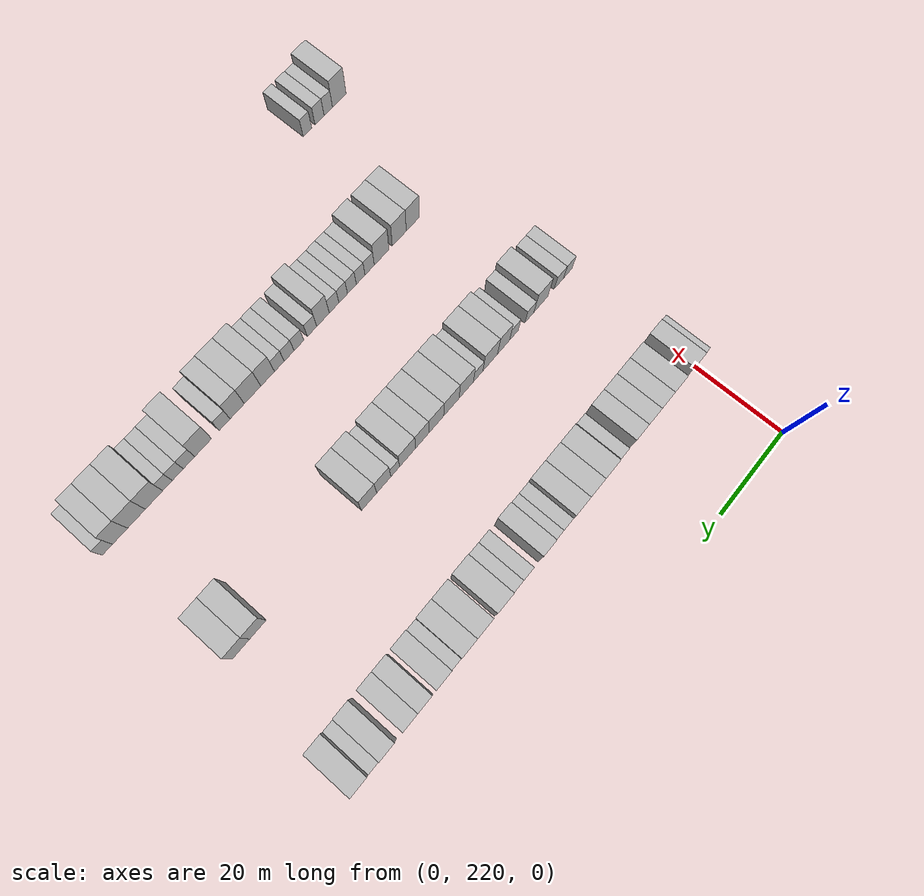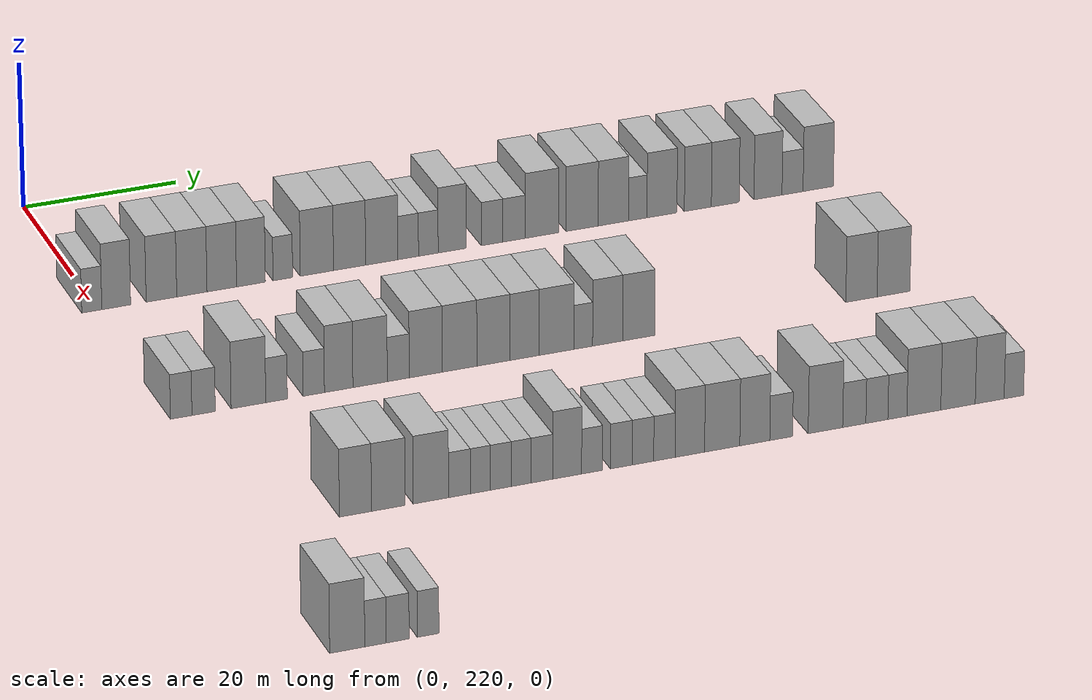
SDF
<sdf version="1.6">
 <world name="default">
  <model name="building_168">
   <static>1</static>
   <pose>25.0000 219.1875 0 0.000000 0.000000 0.000000</pose>
   <link name="link">
    <pose>0 0 3.00 0 0 0</pose>
    <collision name="collision"><geometry><box><size>10.0000 2.5773 6.0000</size></box></geometry></collision>
    <visual name="visual">
     <cast_shadows>0</cast_shadows>
     <geometry><box><size>10.0000 2.5773 6.0000</size></box></geometry>
     <material>
      <script>
       <uri>model://HANNAS_wall/materials/scripts</uri>
       <uri>model://HANNAS_wall/materials/textures</uri>
       <name>vrc/HANNAS_wall</name>
      </script>
     </material>
    </visual>
   </link>
  </model>
  <model name="building_169">
   <static>1</static>
   <pose>25.0000 222.3309 0 0.000000 0.000000 0.000000</pose>
   <link name="link">
    <pose>0 0 4.50 0 0 0</pose>
    <collision name="collision"><geometry><box><size>10.0000 3.7097 9.0000</size></box></geometry></collision>
    <visual name="visual">
     <cast_shadows>0</cast_shadows>
     <geometry><box><size>10.0000 3.7097 9.0000</size></box></geometry>
     <material>
      <script>
       <uri>model://HANNAS_wall/materials/scripts</uri>
       <uri>model://HANNAS_wall/materials/textures</uri>
       <name>vrc/HANNAS_wall</name>
      </script>
     </material>
    </visual>
   </link>
  </model>
  <model name="building_170">
   <static>1</static>
   <pose>25.0000 228.1628 0 0.000000 0.000000 0.000000</pose>
   <link name="link">
    <pose>0 0 4.50 0 0 0</pose>
    <collision name="collision"><geometry><box><size>10.0000 3.9540 9.0000</size></box></geometry></collision>
    <visual name="visual">
     <cast_shadows>0</cast_shadows>
     <geometry><box><size>10.0000 3.9540 9.0000</size></box></geometry>
     <material>
      <script>
       <uri>model://HANNAS_wall/materials/scripts</uri>
       <uri>model://HANNAS_wall/materials/textures</uri>
       <name>vrc/HANNAS_wall</name>
      </script>
     </material>
    </visual>
   </link>
  </model>
  <model name="building_171">
   <static>1</static>
   <pose>25.0000 232.1003 0 0.000000 0.000000 0.000000</pose>
   <link name="link">
    <pose>0 0 4.50 0 0 0</pose>
    <collision name="collision"><geometry><box><size>10.0000 3.9212 9.0000</size></box></geometry></collision>
    <visual name="visual">
     <cast_shadows>0</cast_shadows>
     <geometry><box><size>10.0000 3.9212 9.0000</size></box></geometry>
     <material>
      <script>
       <uri>model://HANNAS_wall/materials/scripts</uri>
       <uri>model://HANNAS_wall/materials/textures</uri>
       <name>vrc/HANNAS_wall</name>
      </script>
     </material>
    </visual>
   </link>
  </model>
  <model name="building_172">
   <static>1</static>
   <pose>25.0000 235.9805 0 0.000000 0.000000 0.000000</pose>
   <link name="link">
    <pose>0 0 4.50 0 0 0</pose>
    <collision name="collision"><geometry><box><size>10.0000 3.8391 9.0000</size></box></geometry></collision>
    <visual name="visual">
     <cast_shadows>0</cast_shadows>
     <geometry><box><size>10.0000 3.8391 9.0000</size></box></geometry>
     <material>
      <script>
       <uri>model://HANNAS_wall/materials/scripts</uri>
       <uri>model://HANNAS_wall/materials/textures</uri>
       <name>vrc/HANNAS_wall</name>
      </script>
     </material>
    </visual>
   </link>
  </model>
  <model name="building_173">
   <static>1</static>
   <pose>25.0000 239.7694 0 0.000000 0.000000 0.000000</pose>
   <link name="link">
    <pose>0 0 4.50 0 0 0</pose>
    <collision name="collision"><geometry><box><size>10.0000 3.7388 9.0000</size></box></geometry></collision>
    <visual name="visual">
     <cast_shadows>0</cast_shadows>
     <geometry><box><size>10.0000 3.7388 9.0000</size></box></geometry>
     <material>
      <script>
       <uri>model://HANNAS_wall/materials/scripts</uri>
       <uri>model://HANNAS_wall/materials/textures</uri>
       <name>vrc/HANNAS_wall</name>
      </script>
     </material>
    </visual>
   </link>
  </model>
  <model name="building_174">
   <static>1</static>
   <pose>25.0000 243.9170 0 0.000000 0.000000 0.000000</pose>
   <link name="link">
    <pose>0 0 3.00 0 0 0</pose>
    <collision name="collision"><geometry><box><size>10.0000 2.5564 6.0000</size></box></geometry></collision>
    <visual name="visual">
     <cast_shadows>0</cast_shadows>
     <geometry><box><size>10.0000 2.5564 6.0000</size></box></geometry>
     <material>
      <script>
       <uri>model://HANNAS_wall/materials/scripts</uri>
       <uri>model://HANNAS_wall/materials/textures</uri>
       <name>vrc/HANNAS_wall</name>
      </script>
     </material>
    </visual>
   </link>
  </model>
  <model name="building_175">
   <static>1</static>
   <pose>25.0000 248.3666 0 0.000000 0.000000 0.000000</pose>
   <link name="link">
    <pose>0 0 4.50 0 0 0</pose>
    <collision name="collision"><geometry><box><size>10.0000 4.3428 9.0000</size></box></geometry></collision>
    <visual name="visual">
     <cast_shadows>0</cast_shadows>
     <geometry><box><size>10.0000 4.3428 9.0000</size></box></geometry>
     <material>
      <script>
       <uri>model://HANNAS_wall/materials/scripts</uri>
       <uri>model://HANNAS_wall/materials/textures</uri>
       <name>vrc/HANNAS_wall</name>
      </script>
     </material>
    </visual>
   </link>
  </model>
  <model name="building_176">
   <static>1</static>
   <pose>25.0000 252.6427 0 0.000000 0.000000 0.000000</pose>
   <link name="link">
    <pose>0 0 4.50 0 0 0</pose>
    <collision name="collision"><geometry><box><size>10.0000 4.2095 9.0000</size></box></geometry></collision>
    <visual name="visual">
     <cast_shadows>0</cast_shadows>
     <geometry><box><size>10.0000 4.2095 9.0000</size></box></geometry>
     <material>
      <script>
       <uri>model://HANNAS_wall/materials/scripts</uri>
       <uri>model://HANNAS_wall/materials/textures</uri>
       <name>vrc/HANNAS_wall</name>
      </script>
     </material>
    </visual>
   </link>
  </model>
  <model name="building_177">
   <static>1</static>
   <pose>25.0000 256.8588 0 0.000000 0.000000 0.000000</pose>
   <link name="link">
    <pose>0 0 4.50 0 0 0</pose>
    <collision name="collision"><geometry><box><size>10.0000 4.2226 9.0000</size></box></geometry></collision>
    <visual name="visual">
     <cast_shadows>0</cast_shadows>
     <geometry><box><size>10.0000 4.2226 9.0000</size></box></geometry>
     <material>
      <script>
       <uri>model://HANNAS_wall/materials/scripts</uri>
       <uri>model://HANNAS_wall/materials/textures</uri>
       <name>vrc/HANNAS_wall</name>
      </script>
     </material>
    </visual>
   </link>
  </model>
  <model name="building_178">
   <static>1</static>
   <pose>25.0000 260.3360 0 0.000000 0.000000 0.000000</pose>
   <link name="link">
    <pose>0 0 3.00 0 0 0</pose>
    <collision name="collision"><geometry><box><size>10.0000 2.7318 6.0000</size></box></geometry></collision>
    <visual name="visual">
     <cast_shadows>0</cast_shadows>
     <geometry><box><size>10.0000 2.7318 6.0000</size></box></geometry>
     <material>
      <script>
       <uri>model://HANNAS_wall/materials/scripts</uri>
       <uri>model://HANNAS_wall/materials/textures</uri>
       <name>vrc/HANNAS_wall</name>
      </script>
     </material>
    </visual>
   </link>
  </model>
  <model name="building_179">
   <static>1</static>
   <pose>25.0000 262.9987 0 0.000000 0.000000 0.000000</pose>
   <link name="link">
    <pose>0 0 3.00 0 0 0</pose>
    <collision name="collision"><geometry><box><size>10.0000 2.5936 6.0000</size></box></geometry></collision>
    <visual name="visual">
     <cast_shadows>0</cast_shadows>
     <geometry><box><size>10.0000 2.5936 6.0000</size></box></geometry>
     <material>
      <script>
       <uri>model://HANNAS_wall/materials/scripts</uri>
       <uri>model://HANNAS_wall/materials/textures</uri>
       <name>vrc/HANNAS_wall</name>
      </script>
     </material>
    </visual>
   </link>
  </model>
  <model name="building_180">
   <static>1</static>
   <pose>25.0000 266.1414 0 0.000000 0.000000 0.000000</pose>
   <link name="link">
    <pose>0 0 4.50 0 0 0</pose>
    <collision name="collision"><geometry><box><size>10.0000 3.6918 9.0000</size></box></geometry></collision>
    <visual name="visual">
     <cast_shadows>0</cast_shadows>
     <geometry><box><size>10.0000 3.6918 9.0000</size></box></geometry>
     <material>
      <script>
       <uri>model://HANNAS_wall/materials/scripts</uri>
       <uri>model://HANNAS_wall/materials/textures</uri>
       <name>vrc/HANNAS_wall</name>
      </script>
     </material>
    </visual>
   </link>
  </model>
  <model name="building_181">
   <static>1</static>
   <pose>25.0000 271.4257 0 0.000000 0.000000 0.000000</pose>
   <link name="link">
    <pose>0 0 3.00 0 0 0</pose>
    <collision name="collision"><geometry><box><size>10.0000 2.8769 6.0000</size></box></geometry></collision>
    <visual name="visual">
     <cast_shadows>0</cast_shadows>
     <geometry><box><size>10.0000 2.8769 6.0000</size></box></geometry>
     <material>
      <script>
       <uri>model://HANNAS_wall/materials/scripts</uri>
       <uri>model://HANNAS_wall/materials/textures</uri>
       <name>vrc/HANNAS_wall</name>
      </script>
     </material>
    </visual>
   </link>
  </model>
  <model name="building_182">
   <static>1</static>
   <pose>25.0000 274.3621 0 0.000000 0.000000 0.000000</pose>
   <link name="link">
    <pose>0 0 3.00 0 0 0</pose>
    <collision name="collision"><geometry><box><size>10.0000 2.9959 6.0000</size></box></geometry></collision>
    <visual name="visual">
     <cast_shadows>0</cast_shadows>
     <geometry><box><size>10.0000 2.9959 6.0000</size></box></geometry>
     <material>
      <script>
       <uri>model://HANNAS_wall/materials/scripts</uri>
       <uri>model://HANNAS_wall/materials/textures</uri>
       <name>vrc/HANNAS_wall</name>
      </script>
     </material>
    </visual>
   </link>
  </model>
  <model name="building_183">
   <static>1</static>
   <pose>25.0000 278.0585 0 0.000000 0.000000 0.000000</pose>
   <link name="link">
    <pose>0 0 4.50 0 0 0</pose>
    <collision name="collision"><geometry><box><size>10.0000 4.3968 9.0000</size></box></geometry></collision>
    <visual name="visual">
     <cast_shadows>0</cast_shadows>
     <geometry><box><size>10.0000 4.3968 9.0000</size></box></geometry>
     <material>
      <script>
       <uri>model://HANNAS_wall/materials/scripts</uri>
       <uri>model://HANNAS_wall/materials/textures</uri>
       <name>vrc/HANNAS_wall</name>
      </script>
     </material>
    </visual>
   </link>
  </model>
  <model name="building_184">
   <static>1</static>
   <pose>25.0000 283.3996 0 0.000000 0.000000 0.000000</pose>
   <link name="link">
    <pose>0 0 4.50 0 0 0</pose>
    <collision name="collision"><geometry><box><size>10.0000 4.2855 9.0000</size></box></geometry></collision>
    <visual name="visual">
     <cast_shadows>0</cast_shadows>
     <geometry><box><size>10.0000 4.2855 9.0000</size></box></geometry>
     <material>
      <script>
       <uri>model://HANNAS_wall/materials/scripts</uri>
       <uri>model://HANNAS_wall/materials/textures</uri>
       <name>vrc/HANNAS_wall</name>
      </script>
     </material>
    </visual>
   </link>
  </model>
  <model name="building_185">
   <static>1</static>
   <pose>25.0000 287.5723 0 0.000000 0.000000 0.000000</pose>
   <link name="link">
    <pose>0 0 4.50 0 0 0</pose>
    <collision name="collision"><geometry><box><size>10.0000 4.0598 9.0000</size></box></geometry></collision>
    <visual name="visual">
     <cast_shadows>0</cast_shadows>
     <geometry><box><size>10.0000 4.0598 9.0000</size></box></geometry>
     <material>
      <script>
       <uri>model://HANNAS_wall/materials/scripts</uri>
       <uri>model://HANNAS_wall/materials/textures</uri>
       <name>vrc/HANNAS_wall</name>
      </script>
     </material>
    </visual>
   </link>
  </model>
  <model name="building_186">
   <static>1</static>
   <pose>25.0000 290.8370 0 0.000000 0.000000 0.000000</pose>
   <link name="link">
    <pose>0 0 3.00 0 0 0</pose>
    <collision name="collision"><geometry><box><size>10.0000 2.4697 6.0000</size></box></geometry></collision>
    <visual name="visual">
     <cast_shadows>0</cast_shadows>
     <geometry><box><size>10.0000 2.4697 6.0000</size></box></geometry>
     <material>
      <script>
       <uri>model://HANNAS_wall/materials/scripts</uri>
       <uri>model://HANNAS_wall/materials/textures</uri>
       <name>vrc/HANNAS_wall</name>
      </script>
     </material>
    </visual>
   </link>
  </model>
  <model name="building_187">
   <static>1</static>
   <pose>25.0000 294.0807 0 0.000000 0.000000 0.000000</pose>
   <link name="link">
    <pose>0 0 4.50 0 0 0</pose>
    <collision name="collision"><geometry><box><size>10.0000 4.0177 9.0000</size></box></geometry></collision>
    <visual name="visual">
     <cast_shadows>0</cast_shadows>
     <geometry><box><size>10.0000 4.0177 9.0000</size></box></geometry>
     <material>
      <script>
       <uri>model://HANNAS_wall/materials/scripts</uri>
       <uri>model://HANNAS_wall/materials/textures</uri>
       <name>vrc/HANNAS_wall</name>
      </script>
     </material>
    </visual>
   </link>
  </model>
  <model name="building_188">
   <static>1</static>
   <pose>25.0000 298.9088 0 0.000000 0.000000 0.000000</pose>
   <link name="link">
    <pose>0 0 4.50 0 0 0</pose>
    <collision name="collision"><geometry><box><size>10.0000 3.6384 9.0000</size></box></geometry></collision>
    <visual name="visual">
     <cast_shadows>0</cast_shadows>
     <geometry><box><size>10.0000 3.6384 9.0000</size></box></geometry>
     <material>
      <script>
       <uri>model://HANNAS_wall/materials/scripts</uri>
       <uri>model://HANNAS_wall/materials/textures</uri>
       <name>vrc/HANNAS_wall</name>
      </script>
     </material>
    </visual>
   </link>
  </model>
  <model name="building_189">
   <static>1</static>
   <pose>25.0000 302.6043 0 0.000000 0.000000 0.000000</pose>
   <link name="link">
    <pose>0 0 4.50 0 0 0</pose>
    <collision name="collision"><geometry><box><size>10.0000 3.7527 9.0000</size></box></geometry></collision>
    <visual name="visual">
     <cast_shadows>0</cast_shadows>
     <geometry><box><size>10.0000 3.7527 9.0000</size></box></geometry>
     <material>
      <script>
       <uri>model://HANNAS_wall/materials/scripts</uri>
       <uri>model://HANNAS_wall/materials/textures</uri>
       <name>vrc/HANNAS_wall</name>
      </script>
     </material>
    </visual>
   </link>
  </model>
  <model name="building_190">
   <static>1</static>
   <pose>25.0000 308.3782 0 0.000000 0.000000 0.000000</pose>
   <link name="link">
    <pose>0 0 4.50 0 0 0</pose>
    <collision name="collision"><geometry><box><size>10.0000 3.7952 9.0000</size></box></geometry></collision>
    <visual name="visual">
     <cast_shadows>0</cast_shadows>
     <geometry><box><size>10.0000 3.7952 9.0000</size></box></geometry>
     <material>
      <script>
       <uri>model://HANNAS_wall/materials/scripts</uri>
       <uri>model://HANNAS_wall/materials/textures</uri>
       <name>vrc/HANNAS_wall</name>
      </script>
     </material>
    </visual>
   </link>
  </model>
  <model name="building_191">
   <static>1</static>
   <pose>25.0000 311.7015 0 0.000000 0.000000 0.000000</pose>
   <link name="link">
    <pose>0 0 3.00 0 0 0</pose>
    <collision name="collision"><geometry><box><size>10.0000 2.8514 6.0000</size></box></geometry></collision>
    <visual name="visual">
     <cast_shadows>0</cast_shadows>
     <geometry><box><size>10.0000 2.8514 6.0000</size></box></geometry>
     <material>
      <script>
       <uri>model://HANNAS_wall/materials/scripts</uri>
       <uri>model://HANNAS_wall/materials/textures</uri>
       <name>vrc/HANNAS_wall</name>
      </script>
     </material>
    </visual>
   </link>
  </model>
  <model name="building_192">
   <static>1</static>
   <pose>25.0000 315.1863 0 0.000000 0.000000 0.000000</pose>
   <link name="link">
    <pose>0 0 4.50 0 0 0</pose>
    <collision name="collision"><geometry><box><size>10.0000 4.1181 9.0000</size></box></geometry></collision>
    <visual name="visual">
     <cast_shadows>0</cast_shadows>
     <geometry><box><size>10.0000 4.1181 9.0000</size></box></geometry>
     <material>
      <script>
       <uri>model://HANNAS_wall/materials/scripts</uri>
       <uri>model://HANNAS_wall/materials/textures</uri>
       <name>vrc/HANNAS_wall</name>
      </script>
     </material>
    </visual>
   </link>
  </model>
  <model name="building_396">
   <static>1</static>
   <pose>55.0000 220.6976 0 0.000000 0.000000 0.000000</pose>
   <link name="link">
    <pose>0 0 3.00 0 0 0</pose>
    <collision name="collision"><geometry><box><size>10.0000 2.7101 6.0000</size></box></geometry></collision>
    <visual name="visual">
     <cast_shadows>0</cast_shadows>
     <geometry><box><size>10.0000 2.7101 6.0000</size></box></geometry>
     <material>
      <script>
       <uri>model://HANNAS_wall/materials/scripts</uri>
       <uri>model://HANNAS_wall/materials/textures</uri>
       <name>vrc/HANNAS_wall</name>
      </script>
     </material>
    </visual>
   </link>
  </model>
  <model name="building_397">
   <static>1</static>
   <pose>55.0000 223.5245 0 0.000000 0.000000 0.000000</pose>
   <link name="link">
    <pose>0 0 3.00 0 0 0</pose>
    <collision name="collision"><geometry><box><size>10.0000 2.9437 6.0000</size></box></geometry></collision>
    <visual name="visual">
     <cast_shadows>0</cast_shadows>
     <geometry><box><size>10.0000 2.9437 6.0000</size></box></geometry>
     <material>
      <script>
       <uri>model://HANNAS_wall/materials/scripts</uri>
       <uri>model://HANNAS_wall/materials/textures</uri>
       <name>vrc/HANNAS_wall</name>
      </script>
     </material>
    </visual>
   </link>
  </model>
  <model name="building_398">
   <static>1</static>
   <pose>55.0000 229.1892 0 0.000000 0.000000 0.000000</pose>
   <link name="link">
    <pose>0 0 4.50 0 0 0</pose>
    <collision name="collision"><geometry><box><size>10.0000 4.3858 9.0000</size></box></geometry></collision>
    <visual name="visual">
     <cast_shadows>0</cast_shadows>
     <geometry><box><size>10.0000 4.3858 9.0000</size></box></geometry>
     <material>
      <script>
       <uri>model://HANNAS_wall/materials/scripts</uri>
       <uri>model://HANNAS_wall/materials/textures</uri>
       <name>vrc/HANNAS_wall</name>
      </script>
     </material>
    </visual>
   </link>
  </model>
  <model name="building_399">
   <static>1</static>
   <pose>55.0000 232.7506 0 0.000000 0.000000 0.000000</pose>
   <link name="link">
    <pose>0 0 3.00 0 0 0</pose>
    <collision name="collision"><geometry><box><size>10.0000 2.7369 6.0000</size></box></geometry></collision>
    <visual name="visual">
     <cast_shadows>0</cast_shadows>
     <geometry><box><size>10.0000 2.7369 6.0000</size></box></geometry>
     <material>
      <script>
       <uri>model://HANNAS_wall/materials/scripts</uri>
       <uri>model://HANNAS_wall/materials/textures</uri>
       <name>vrc/HANNAS_wall</name>
      </script>
     </material>
    </visual>
   </link>
  </model>
  <model name="building_400">
   <static>1</static>
   <pose>55.0000 237.4791 0 0.000000 0.000000 0.000000</pose>
   <link name="link">
    <pose>0 0 3.00 0 0 0</pose>
    <collision name="collision"><geometry><box><size>10.0000 2.7201 6.0000</size></box></geometry></collision>
    <visual name="visual">
     <cast_shadows>0</cast_shadows>
     <geometry><box><size>10.0000 2.7201 6.0000</size></box></geometry>
     <material>
      <script>
       <uri>model://HANNAS_wall/materials/scripts</uri>
       <uri>model://HANNAS_wall/materials/textures</uri>
       <name>vrc/HANNAS_wall</name>
      </script>
     </material>
    </visual>
   </link>
  </model>
  <model name="building_401">
   <static>1</static>
   <pose>55.0000 240.6522 0 0.000000 0.000000 0.000000</pose>
   <link name="link">
    <pose>0 0 4.50 0 0 0</pose>
    <collision name="collision"><geometry><box><size>10.0000 3.6261 9.0000</size></box></geometry></collision>
    <visual name="visual">
     <cast_shadows>0</cast_shadows>
     <geometry><box><size>10.0000 3.6261 9.0000</size></box></geometry>
     <material>
      <script>
       <uri>model://HANNAS_wall/materials/scripts</uri>
       <uri>model://HANNAS_wall/materials/textures</uri>
       <name>vrc/HANNAS_wall</name>
      </script>
     </material>
    </visual>
   </link>
  </model>
  <model name="building_402">
   <static>1</static>
   <pose>55.0000 244.6636 0 0.000000 0.000000 0.000000</pose>
   <link name="link">
    <pose>0 0 4.50 0 0 0</pose>
    <collision name="collision"><geometry><box><size>10.0000 4.3966 9.0000</size></box></geometry></collision>
    <visual name="visual">
     <cast_shadows>0</cast_shadows>
     <geometry><box><size>10.0000 4.3966 9.0000</size></box></geometry>
     <material>
      <script>
       <uri>model://HANNAS_wall/materials/scripts</uri>
       <uri>model://HANNAS_wall/materials/textures</uri>
       <name>vrc/HANNAS_wall</name>
      </script>
     </material>
    </visual>
   </link>
  </model>
  <model name="building_403">
   <static>1</static>
   <pose>55.0000 248.2671 0 0.000000 0.000000 0.000000</pose>
   <link name="link">
    <pose>0 0 3.00 0 0 0</pose>
    <collision name="collision"><geometry><box><size>10.0000 2.8104 6.0000</size></box></geometry></collision>
    <visual name="visual">
     <cast_shadows>0</cast_shadows>
     <geometry><box><size>10.0000 2.8104 6.0000</size></box></geometry>
     <material>
      <script>
       <uri>model://HANNAS_wall/materials/scripts</uri>
       <uri>model://HANNAS_wall/materials/textures</uri>
       <name>vrc/HANNAS_wall</name>
      </script>
     </material>
    </visual>
   </link>
  </model>
  <model name="building_404">
   <static>1</static>
   <pose>55.0000 251.7853 0 0.000000 0.000000 0.000000</pose>
   <link name="link">
    <pose>0 0 4.50 0 0 0</pose>
    <collision name="collision"><geometry><box><size>10.0000 4.2259 9.0000</size></box></geometry></collision>
    <visual name="visual">
     <cast_shadows>0</cast_shadows>
     <geometry><box><size>10.0000 4.2259 9.0000</size></box></geometry>
     <material>
      <script>
       <uri>model://HANNAS_wall/materials/scripts</uri>
       <uri>model://HANNAS_wall/materials/textures</uri>
       <name>vrc/HANNAS_wall</name>
      </script>
     </material>
    </visual>
   </link>
  </model>
  <model name="building_405">
   <static>1</static>
   <pose>55.0000 256.1286 0 0.000000 0.000000 0.000000</pose>
   <link name="link">
    <pose>0 0 4.50 0 0 0</pose>
    <collision name="collision"><geometry><box><size>10.0000 4.4607 9.0000</size></box></geometry></collision>
    <visual name="visual">
     <cast_shadows>0</cast_shadows>
     <geometry><box><size>10.0000 4.4607 9.0000</size></box></geometry>
     <material>
      <script>
       <uri>model://HANNAS_wall/materials/scripts</uri>
       <uri>model://HANNAS_wall/materials/textures</uri>
       <name>vrc/HANNAS_wall</name>
      </script>
     </material>
    </visual>
   </link>
  </model>
  <model name="building_406">
   <static>1</static>
   <pose>55.0000 260.5075 0 0.000000 0.000000 0.000000</pose>
   <link name="link">
    <pose>0 0 4.50 0 0 0</pose>
    <collision name="collision"><geometry><box><size>10.0000 4.2970 9.0000</size></box></geometry></collision>
    <visual name="visual">
     <cast_shadows>0</cast_shadows>
     <geometry><box><size>10.0000 4.2970 9.0000</size></box></geometry>
     <material>
      <script>
       <uri>model://HANNAS_wall/materials/scripts</uri>
       <uri>model://HANNAS_wall/materials/textures</uri>
       <name>vrc/HANNAS_wall</name>
      </script>
     </material>
    </visual>
   </link>
  </model>
  <model name="building_407">
   <static>1</static>
   <pose>55.0000 264.5413 0 0.000000 0.000000 0.000000</pose>
   <link name="link">
    <pose>0 0 4.50 0 0 0</pose>
    <collision name="collision"><geometry><box><size>10.0000 3.7707 9.0000</size></box></geometry></collision>
    <visual name="visual">
     <cast_shadows>0</cast_shadows>
     <geometry><box><size>10.0000 3.7707 9.0000</size></box></geometry>
     <material>
      <script>
       <uri>model://HANNAS_wall/materials/scripts</uri>
       <uri>model://HANNAS_wall/materials/textures</uri>
       <name>vrc/HANNAS_wall</name>
      </script>
     </material>
    </visual>
   </link>
  </model>
  <model name="building_408">
   <static>1</static>
   <pose>55.0000 268.6738 0 0.000000 0.000000 0.000000</pose>
   <link name="link">
    <pose>0 0 4.50 0 0 0</pose>
    <collision name="collision"><geometry><box><size>10.0000 4.4942 9.0000</size></box></geometry></collision>
    <visual name="visual">
     <cast_shadows>0</cast_shadows>
     <geometry><box><size>10.0000 4.4942 9.0000</size></box></geometry>
     <material>
      <script>
       <uri>model://HANNAS_wall/materials/scripts</uri>
       <uri>model://HANNAS_wall/materials/textures</uri>
       <name>vrc/HANNAS_wall</name>
      </script>
     </material>
    </visual>
   </link>
  </model>
  <model name="building_409">
   <static>1</static>
   <pose>55.0000 272.1300 0 0.000000 0.000000 0.000000</pose>
   <link name="link">
    <pose>0 0 3.00 0 0 0</pose>
    <collision name="collision"><geometry><box><size>10.0000 2.4181 6.0000</size></box></geometry></collision>
    <visual name="visual">
     <cast_shadows>0</cast_shadows>
     <geometry><box><size>10.0000 2.4181 6.0000</size></box></geometry>
     <material>
      <script>
       <uri>model://HANNAS_wall/materials/scripts</uri>
       <uri>model://HANNAS_wall/materials/textures</uri>
       <name>vrc/HANNAS_wall</name>
      </script>
     </material>
    </visual>
   </link>
  </model>
  <model name="building_410">
   <static>1</static>
   <pose>55.0000 275.3015 0 0.000000 0.000000 0.000000</pose>
   <link name="link">
    <pose>0 0 4.50 0 0 0</pose>
    <collision name="collision"><geometry><box><size>10.0000 3.9250 9.0000</size></box></geometry></collision>
    <visual name="visual">
     <cast_shadows>0</cast_shadows>
     <geometry><box><size>10.0000 3.9250 9.0000</size></box></geometry>
     <material>
      <script>
       <uri>model://HANNAS_wall/materials/scripts</uri>
       <uri>model://HANNAS_wall/materials/textures</uri>
       <name>vrc/HANNAS_wall</name>
      </script>
     </material>
    </visual>
   </link>
  </model>
  <model name="building_411">
   <static>1</static>
   <pose>55.0000 279.3459 0 0.000000 0.000000 0.000000</pose>
   <link name="link">
    <pose>0 0 4.50 0 0 0</pose>
    <collision name="collision"><geometry><box><size>10.0000 4.1639 9.0000</size></box></geometry></collision>
    <visual name="visual">
     <cast_shadows>0</cast_shadows>
     <geometry><box><size>10.0000 4.1639 9.0000</size></box></geometry>
     <material>
      <script>
       <uri>model://HANNAS_wall/materials/scripts</uri>
       <uri>model://HANNAS_wall/materials/textures</uri>
       <name>vrc/HANNAS_wall</name>
      </script>
     </material>
    </visual>
   </link>
  </model>
  <model name="building_412">
   <static>1</static>
   <pose>55.0000 308.6479 0 0.000000 0.000000 0.000000</pose>
   <link name="link">
    <pose>0 0 4.50 0 0 0</pose>
    <collision name="collision"><geometry><box><size>10.0000 4.1467 9.0000</size></box></geometry></collision>
    <visual name="visual">
     <cast_shadows>0</cast_shadows>
     <geometry><box><size>10.0000 4.1467 9.0000</size></box></geometry>
     <material>
      <script>
       <uri>model://HANNAS_wall/materials/scripts</uri>
       <uri>model://HANNAS_wall/materials/textures</uri>
       <name>vrc/HANNAS_wall</name>
      </script>
     </material>
    </visual>
   </link>
  </model>
  <model name="building_413">
   <static>1</static>
   <pose>55.0000 312.9088 0 0.000000 0.000000 0.000000</pose>
   <link name="link">
    <pose>0 0 4.50 0 0 0</pose>
    <collision name="collision"><geometry><box><size>10.0000 4.3750 9.0000</size></box></geometry></collision>
    <visual name="visual">
     <cast_shadows>0</cast_shadows>
     <geometry><box><size>10.0000 4.3750 9.0000</size></box></geometry>
     <material>
      <script>
       <uri>model://HANNAS_wall/materials/scripts</uri>
       <uri>model://HANNAS_wall/materials/textures</uri>
       <name>vrc/HANNAS_wall</name>
      </script>
     </material>
    </visual>
   </link>
  </model>
  <model name="building_617">
   <static>1</static>
   <pose>85.0000 232.1619 0 0.000000 0.000000 0.000000</pose>
   <link name="link">
    <pose>0 0 4.50 0 0 0</pose>
    <collision name="collision"><geometry><box><size>10.0000 3.9866 9.0000</size></box></geometry></collision>
    <visual name="visual">
     <cast_shadows>0</cast_shadows>
     <geometry><box><size>10.0000 3.9866 9.0000</size></box></geometry>
     <material>
      <script>
       <uri>model://HANNAS_wall/materials/scripts</uri>
       <uri>model://HANNAS_wall/materials/textures</uri>
       <name>vrc/HANNAS_wall</name>
      </script>
     </material>
    </visual>
   </link>
  </model>
  <model name="building_618">
   <static>1</static>
   <pose>85.0000 236.2580 0 0.000000 0.000000 0.000000</pose>
   <link name="link">
    <pose>0 0 4.50 0 0 0</pose>
    <collision name="collision"><geometry><box><size>10.0000 4.2057 9.0000</size></box></geometry></collision>
    <visual name="visual">
     <cast_shadows>0</cast_shadows>
     <geometry><box><size>10.0000 4.2057 9.0000</size></box></geometry>
     <material>
      <script>
       <uri>model://HANNAS_wall/materials/scripts</uri>
       <uri>model://HANNAS_wall/materials/textures</uri>
       <name>vrc/HANNAS_wall</name>
      </script>
     </material>
    </visual>
   </link>
  </model>
  <model name="building_619">
   <static>1</static>
   <pose>85.0000 241.5610 0 0.000000 0.000000 0.000000</pose>
   <link name="link">
    <pose>0 0 4.50 0 0 0</pose>
    <collision name="collision"><geometry><box><size>10.0000 4.4003 9.0000</size></box></geometry></collision>
    <visual name="visual">
     <cast_shadows>0</cast_shadows>
     <geometry><box><size>10.0000 4.4003 9.0000</size></box></geometry>
     <material>
      <script>
       <uri>model://HANNAS_wall/materials/scripts</uri>
       <uri>model://HANNAS_wall/materials/textures</uri>
       <name>vrc/HANNAS_wall</name>
      </script>
     </material>
    </visual>
   </link>
  </model>
  <model name="building_620">
   <static>1</static>
   <pose>85.0000 245.1350 0 0.000000 0.000000 0.000000</pose>
   <link name="link">
    <pose>0 0 3.00 0 0 0</pose>
    <collision name="collision"><geometry><box><size>10.0000 2.7478 6.0000</size></box></geometry></collision>
    <visual name="visual">
     <cast_shadows>0</cast_shadows>
     <geometry><box><size>10.0000 2.7478 6.0000</size></box></geometry>
     <material>
      <script>
       <uri>model://HANNAS_wall/materials/scripts</uri>
       <uri>model://HANNAS_wall/materials/textures</uri>
       <name>vrc/HANNAS_wall</name>
      </script>
     </material>
    </visual>
   </link>
  </model>
  <model name="building_621">
   <static>1</static>
   <pose>85.0000 247.7705 0 0.000000 0.000000 0.000000</pose>
   <link name="link">
    <pose>0 0 3.00 0 0 0</pose>
    <collision name="collision"><geometry><box><size>10.0000 2.5231 6.0000</size></box></geometry></collision>
    <visual name="visual">
     <cast_shadows>0</cast_shadows>
     <geometry><box><size>10.0000 2.5231 6.0000</size></box></geometry>
     <material>
      <script>
       <uri>model://HANNAS_wall/materials/scripts</uri>
       <uri>model://HANNAS_wall/materials/textures</uri>
       <name>vrc/HANNAS_wall</name>
      </script>
     </material>
    </visual>
   </link>
  </model>
  <model name="building_622">
   <static>1</static>
   <pose>85.0000 250.3237 0 0.000000 0.000000 0.000000</pose>
   <link name="link">
    <pose>0 0 3.00 0 0 0</pose>
    <collision name="collision"><geometry><box><size>10.0000 2.5832 6.0000</size></box></geometry></collision>
    <visual name="visual">
     <cast_shadows>0</cast_shadows>
     <geometry><box><size>10.0000 2.5832 6.0000</size></box></geometry>
     <material>
      <script>
       <uri>model://HANNAS_wall/materials/scripts</uri>
       <uri>model://HANNAS_wall/materials/textures</uri>
       <name>vrc/HANNAS_wall</name>
      </script>
     </material>
    </visual>
   </link>
  </model>
  <model name="building_623">
   <static>1</static>
   <pose>85.0000 252.8603 0 0.000000 0.000000 0.000000</pose>
   <link name="link">
    <pose>0 0 3.00 0 0 0</pose>
    <collision name="collision"><geometry><box><size>10.0000 2.4901 6.0000</size></box></geometry></collision>
    <visual name="visual">
     <cast_shadows>0</cast_shadows>
     <geometry><box><size>10.0000 2.4901 6.0000</size></box></geometry>
     <material>
      <script>
       <uri>model://HANNAS_wall/materials/scripts</uri>
       <uri>model://HANNAS_wall/materials/textures</uri>
       <name>vrc/HANNAS_wall</name>
      </script>
     </material>
    </visual>
   </link>
  </model>
  <model name="building_624">
   <static>1</static>
   <pose>85.0000 255.4836 0 0.000000 0.000000 0.000000</pose>
   <link name="link">
    <pose>0 0 3.00 0 0 0</pose>
    <collision name="collision"><geometry><box><size>10.0000 2.7565 6.0000</size></box></geometry></collision>
    <visual name="visual">
     <cast_shadows>0</cast_shadows>
     <geometry><box><size>10.0000 2.7565 6.0000</size></box></geometry>
     <material>
      <script>
       <uri>model://HANNAS_wall/materials/scripts</uri>
       <uri>model://HANNAS_wall/materials/textures</uri>
       <name>vrc/HANNAS_wall</name>
      </script>
     </material>
    </visual>
   </link>
  </model>
  <model name="building_625">
   <static>1</static>
   <pose>85.0000 258.6762 0 0.000000 0.000000 0.000000</pose>
   <link name="link">
    <pose>0 0 4.50 0 0 0</pose>
    <collision name="collision"><geometry><box><size>10.0000 3.6286 9.0000</size></box></geometry></collision>
    <visual name="visual">
     <cast_shadows>0</cast_shadows>
     <geometry><box><size>10.0000 3.6286 9.0000</size></box></geometry>
     <material>
      <script>
       <uri>model://HANNAS_wall/materials/scripts</uri>
       <uri>model://HANNAS_wall/materials/textures</uri>
       <name>vrc/HANNAS_wall</name>
      </script>
     </material>
    </visual>
   </link>
  </model>
  <model name="building_626">
   <static>1</static>
   <pose>85.0000 261.8162 0 0.000000 0.000000 0.000000</pose>
   <link name="link">
    <pose>0 0 3.00 0 0 0</pose>
    <collision name="collision"><geometry><box><size>10.0000 2.6514 6.0000</size></box></geometry></collision>
    <visual name="visual">
     <cast_shadows>0</cast_shadows>
     <geometry><box><size>10.0000 2.6514 6.0000</size></box></geometry>
     <material>
      <script>
       <uri>model://HANNAS_wall/materials/scripts</uri>
       <uri>model://HANNAS_wall/materials/textures</uri>
       <name>vrc/HANNAS_wall</name>
      </script>
     </material>
    </visual>
   </link>
  </model>
  <model name="building_627">
   <static>1</static>
   <pose>85.0000 265.5164 0 0.000000 0.000000 0.000000</pose>
   <link name="link">
    <pose>0 0 3.00 0 0 0</pose>
    <collision name="collision"><geometry><box><size>10.0000 2.7490 6.0000</size></box></geometry></collision>
    <visual name="visual">
     <cast_shadows>0</cast_shadows>
     <geometry><box><size>10.0000 2.7490 6.0000</size></box></geometry>
     <material>
      <script>
       <uri>model://HANNAS_wall/materials/scripts</uri>
       <uri>model://HANNAS_wall/materials/textures</uri>
       <name>vrc/HANNAS_wall</name>
      </script>
     </material>
    </visual>
   </link>
  </model>
  <model name="building_628">
   <static>1</static>
   <pose>85.0000 268.2564 0 0.000000 0.000000 0.000000</pose>
   <link name="link">
    <pose>0 0 3.00 0 0 0</pose>
    <collision name="collision"><geometry><box><size>10.0000 2.7310 6.0000</size></box></geometry></collision>
    <visual name="visual">
     <cast_shadows>0</cast_shadows>
     <geometry><box><size>10.0000 2.7310 6.0000</size></box></geometry>
     <material>
      <script>
       <uri>model://HANNAS_wall/materials/scripts</uri>
       <uri>model://HANNAS_wall/materials/textures</uri>
       <name>vrc/HANNAS_wall</name>
      </script>
     </material>
    </visual>
   </link>
  </model>
  <model name="building_629">
   <static>1</static>
   <pose>85.0000 270.9801 0 0.000000 0.000000 0.000000</pose>
   <link name="link">
    <pose>0 0 3.00 0 0 0</pose>
    <collision name="collision"><geometry><box><size>10.0000 2.7163 6.0000</size></box></geometry></collision>
    <visual name="visual">
     <cast_shadows>0</cast_shadows>
     <geometry><box><size>10.0000 2.7163 6.0000</size></box></geometry>
     <material>
      <script>
       <uri>model://HANNAS_wall/materials/scripts</uri>
       <uri>model://HANNAS_wall/materials/textures</uri>
       <name>vrc/HANNAS_wall</name>
      </script>
     </material>
    </visual>
   </link>
  </model>
  <model name="building_630">
   <static>1</static>
   <pose>85.0000 274.2190 0 0.000000 0.000000 0.000000</pose>
   <link name="link">
    <pose>0 0 4.50 0 0 0</pose>
    <collision name="collision"><geometry><box><size>10.0000 3.7616 9.0000</size></box></geometry></collision>
    <visual name="visual">
     <cast_shadows>0</cast_shadows>
     <geometry><box><size>10.0000 3.7616 9.0000</size></box></geometry>
     <material>
      <script>
       <uri>model://HANNAS_wall/materials/scripts</uri>
       <uri>model://HANNAS_wall/materials/textures</uri>
       <name>vrc/HANNAS_wall</name>
      </script>
     </material>
    </visual>
   </link>
  </model>
  <model name="building_631">
   <static>1</static>
   <pose>85.0000 278.3481 0 0.000000 0.000000 0.000000</pose>
   <link name="link">
    <pose>0 0 4.50 0 0 0</pose>
    <collision name="collision"><geometry><box><size>10.0000 4.4965 9.0000</size></box></geometry></collision>
    <visual name="visual">
     <cast_shadows>0</cast_shadows>
     <geometry><box><size>10.0000 4.4965 9.0000</size></box></geometry>
     <material>
      <script>
       <uri>model://HANNAS_wall/materials/scripts</uri>
       <uri>model://HANNAS_wall/materials/textures</uri>
       <name>vrc/HANNAS_wall</name>
      </script>
     </material>
    </visual>
   </link>
  </model>
  <model name="building_632">
   <static>1</static>
   <pose>85.0000 282.5165 0 0.000000 0.000000 0.000000</pose>
   <link name="link">
    <pose>0 0 4.50 0 0 0</pose>
    <collision name="collision"><geometry><box><size>10.0000 3.8402 9.0000</size></box></geometry></collision>
    <visual name="visual">
     <cast_shadows>0</cast_shadows>
     <geometry><box><size>10.0000 3.8402 9.0000</size></box></geometry>
     <material>
      <script>
       <uri>model://HANNAS_wall/materials/scripts</uri>
       <uri>model://HANNAS_wall/materials/textures</uri>
       <name>vrc/HANNAS_wall</name>
      </script>
     </material>
    </visual>
   </link>
  </model>
  <model name="building_633">
   <static>1</static>
   <pose>85.0000 285.8984 0 0.000000 0.000000 0.000000</pose>
   <link name="link">
    <pose>0 0 3.00 0 0 0</pose>
    <collision name="collision"><geometry><box><size>10.0000 2.9236 6.0000</size></box></geometry></collision>
    <visual name="visual">
     <cast_shadows>0</cast_shadows>
     <geometry><box><size>10.0000 2.9236 6.0000</size></box></geometry>
     <material>
      <script>
       <uri>model://HANNAS_wall/materials/scripts</uri>
       <uri>model://HANNAS_wall/materials/textures</uri>
       <name>vrc/HANNAS_wall</name>
      </script>
     </material>
    </visual>
   </link>
  </model>
  <model name="building_634">
   <static>1</static>
   <pose>85.0000 291.5830 0 0.000000 0.000000 0.000000</pose>
   <link name="link">
    <pose>0 0 4.50 0 0 0</pose>
    <collision name="collision"><geometry><box><size>10.0000 4.4458 9.0000</size></box></geometry></collision>
    <visual name="visual">
     <cast_shadows>0</cast_shadows>
     <geometry><box><size>10.0000 4.4458 9.0000</size></box></geometry>
     <material>
      <script>
       <uri>model://HANNAS_wall/materials/scripts</uri>
       <uri>model://HANNAS_wall/materials/textures</uri>
       <name>vrc/HANNAS_wall</name>
      </script>
     </material>
    </visual>
   </link>
  </model>
  <model name="building_635">
   <static>1</static>
   <pose>85.0000 295.3032 0 0.000000 0.000000 0.000000</pose>
   <link name="link">
    <pose>0 0 3.00 0 0 0</pose>
    <collision name="collision"><geometry><box><size>10.0000 2.9946 6.0000</size></box></geometry></collision>
    <visual name="visual">
     <cast_shadows>0</cast_shadows>
     <geometry><box><size>10.0000 2.9946 6.0000</size></box></geometry>
     <material>
      <script>
       <uri>model://HANNAS_wall/materials/scripts</uri>
       <uri>model://HANNAS_wall/materials/textures</uri>
       <name>vrc/HANNAS_wall</name>
      </script>
     </material>
    </visual>
   </link>
  </model>
  <model name="building_636">
   <static>1</static>
   <pose>85.0000 298.2219 0 0.000000 0.000000 0.000000</pose>
   <link name="link">
    <pose>0 0 3.00 0 0 0</pose>
    <collision name="collision"><geometry><box><size>10.0000 2.8429 6.0000</size></box></geometry></collision>
    <visual name="visual">
     <cast_shadows>0</cast_shadows>
     <geometry><box><size>10.0000 2.8429 6.0000</size></box></geometry>
     <material>
      <script>
       <uri>model://HANNAS_wall/materials/scripts</uri>
       <uri>model://HANNAS_wall/materials/textures</uri>
       <name>vrc/HANNAS_wall</name>
      </script>
     </material>
    </visual>
   </link>
  </model>
  <model name="building_637">
   <static>1</static>
   <pose>85.0000 300.8736 0 0.000000 0.000000 0.000000</pose>
   <link name="link">
    <pose>0 0 3.00 0 0 0</pose>
    <collision name="collision"><geometry><box><size>10.0000 2.4604 6.0000</size></box></geometry></collision>
    <visual name="visual">
     <cast_shadows>0</cast_shadows>
     <geometry><box><size>10.0000 2.4604 6.0000</size></box></geometry>
     <material>
      <script>
       <uri>model://HANNAS_wall/materials/scripts</uri>
       <uri>model://HANNAS_wall/materials/textures</uri>
       <name>vrc/HANNAS_wall</name>
      </script>
     </material>
    </visual>
   </link>
  </model>
  <model name="building_638">
   <static>1</static>
   <pose>85.0000 304.3029 0 0.000000 0.000000 0.000000</pose>
   <link name="link">
    <pose>0 0 4.50 0 0 0</pose>
    <collision name="collision"><geometry><box><size>10.0000 4.3980 9.0000</size></box></geometry></collision>
    <visual name="visual">
     <cast_shadows>0</cast_shadows>
     <geometry><box><size>10.0000 4.3980 9.0000</size></box></geometry>
     <material>
      <script>
       <uri>model://HANNAS_wall/materials/scripts</uri>
       <uri>model://HANNAS_wall/materials/textures</uri>
       <name>vrc/HANNAS_wall</name>
      </script>
     </material>
    </visual>
   </link>
  </model>
  <model name="building_639">
   <static>1</static>
   <pose>85.0000 308.7445 0 0.000000 0.000000 0.000000</pose>
   <link name="link">
    <pose>0 0 4.50 0 0 0</pose>
    <collision name="collision"><geometry><box><size>10.0000 4.4852 9.0000</size></box></geometry></collision>
    <visual name="visual">
     <cast_shadows>0</cast_shadows>
     <geometry><box><size>10.0000 4.4852 9.0000</size></box></geometry>
     <material>
      <script>
       <uri>model://HANNAS_wall/materials/scripts</uri>
       <uri>model://HANNAS_wall/materials/textures</uri>
       <name>vrc/HANNAS_wall</name>
      </script>
     </material>
    </visual>
   </link>
  </model>
  <model name="building_640">
   <static>1</static>
   <pose>85.0000 312.8681 0 0.000000 0.000000 0.000000</pose>
   <link name="link">
    <pose>0 0 4.50 0 0 0</pose>
    <collision name="collision"><geometry><box><size>10.0000 3.7620 9.0000</size></box></geometry></collision>
    <visual name="visual">
     <cast_shadows>0</cast_shadows>
     <geometry><box><size>10.0000 3.7620 9.0000</size></box></geometry>
     <material>
      <script>
       <uri>model://HANNAS_wall/materials/scripts</uri>
       <uri>model://HANNAS_wall/materials/textures</uri>
       <name>vrc/HANNAS_wall</name>
      </script>
     </material>
    </visual>
   </link>
  </model>
  <model name="building_641">
   <static>1</static>
   <pose>85.0000 316.0205 0 0.000000 0.000000 0.000000</pose>
   <link name="link">
    <pose>0 0 3.00 0 0 0</pose>
    <collision name="collision"><geometry><box><size>10.0000 2.5429 6.0000</size></box></geometry></collision>
    <visual name="visual">
     <cast_shadows>0</cast_shadows>
     <geometry><box><size>10.0000 2.5429 6.0000</size></box></geometry>
     <material>
      <script>
       <uri>model://HANNAS_wall/materials/scripts</uri>
       <uri>model://HANNAS_wall/materials/textures</uri>
       <name>vrc/HANNAS_wall</name>
      </script>
     </material>
    </visual>
   </link>
  </model>
  <model name="building_858">
   <static>1</static>
   <pose>115.0000 220.5506 0 0.000000 0.000000 0.000000</pose>
   <link name="link">
    <pose>0 0 4.50 0 0 0</pose>
    <collision name="collision"><geometry><box><size>10.0000 4.2356 9.0000</size></box></geometry></collision>
    <visual name="visual">
     <cast_shadows>0</cast_shadows>
     <geometry><box><size>10.0000 4.2356 9.0000</size></box></geometry>
     <material>
      <script>
       <uri>model://HANNAS_wall/materials/scripts</uri>
       <uri>model://HANNAS_wall/materials/textures</uri>
       <name>vrc/HANNAS_wall</name>
      </script>
     </material>
    </visual>
   </link>
  </model>
  <model name="building_859">
   <static>1</static>
   <pose>115.0000 223.9564 0 0.000000 0.000000 0.000000</pose>
   <link name="link">
    <pose>0 0 3.00 0 0 0</pose>
    <collision name="collision"><geometry><box><size>10.0000 2.5760 6.0000</size></box></geometry></collision>
    <visual name="visual">
     <cast_shadows>0</cast_shadows>
     <geometry><box><size>10.0000 2.5760 6.0000</size></box></geometry>
     <material>
      <script>
       <uri>model://HANNAS_wall/materials/scripts</uri>
       <uri>model://HANNAS_wall/materials/textures</uri>
       <name>vrc/HANNAS_wall</name>
      </script>
     </material>
    </visual>
   </link>
  </model>
  <model name="building_860">
   <static>1</static>
   <pose>115.0000 226.6384 0 0.000000 0.000000 0.000000</pose>
   <link name="link">
    <pose>0 0 3.00 0 0 0</pose>
    <collision name="collision"><geometry><box><size>10.0000 2.7881 6.0000</size></box></geometry></collision>
    <visual name="visual">
     <cast_shadows>0</cast_shadows>
     <geometry><box><size>10.0000 2.7881 6.0000</size></box></geometry>
     <material>
      <script>
       <uri>model://HANNAS_wall/materials/scripts</uri>
       <uri>model://HANNAS_wall/materials/textures</uri>
       <name>vrc/HANNAS_wall</name>
      </script>
     </material>
    </visual>
   </link>
  </model>
  <model name="building_861">
   <static>1</static>
   <pose>115.0000 230.3403 0 0.000000 0.000000 0.000000</pose>
   <link name="link">
    <pose>0 0 3.00 0 0 0</pose>
    <collision name="collision"><geometry><box><size>10.0000 2.6157 6.0000</size></box></geometry></collision>
    <visual name="visual">
     <cast_shadows>0</cast_shadows>
     <geometry><box><size>10.0000 2.6157 6.0000</size></box></geometry>
     <material>
      <script>
       <uri>model://HANNAS_wall/materials/scripts</uri>
       <uri>model://HANNAS_wall/materials/textures</uri>
       <name>vrc/HANNAS_wall</name>
      </script>
     </material>
    </visual>
   </link>
  </model>
 </world>
</sdf>
